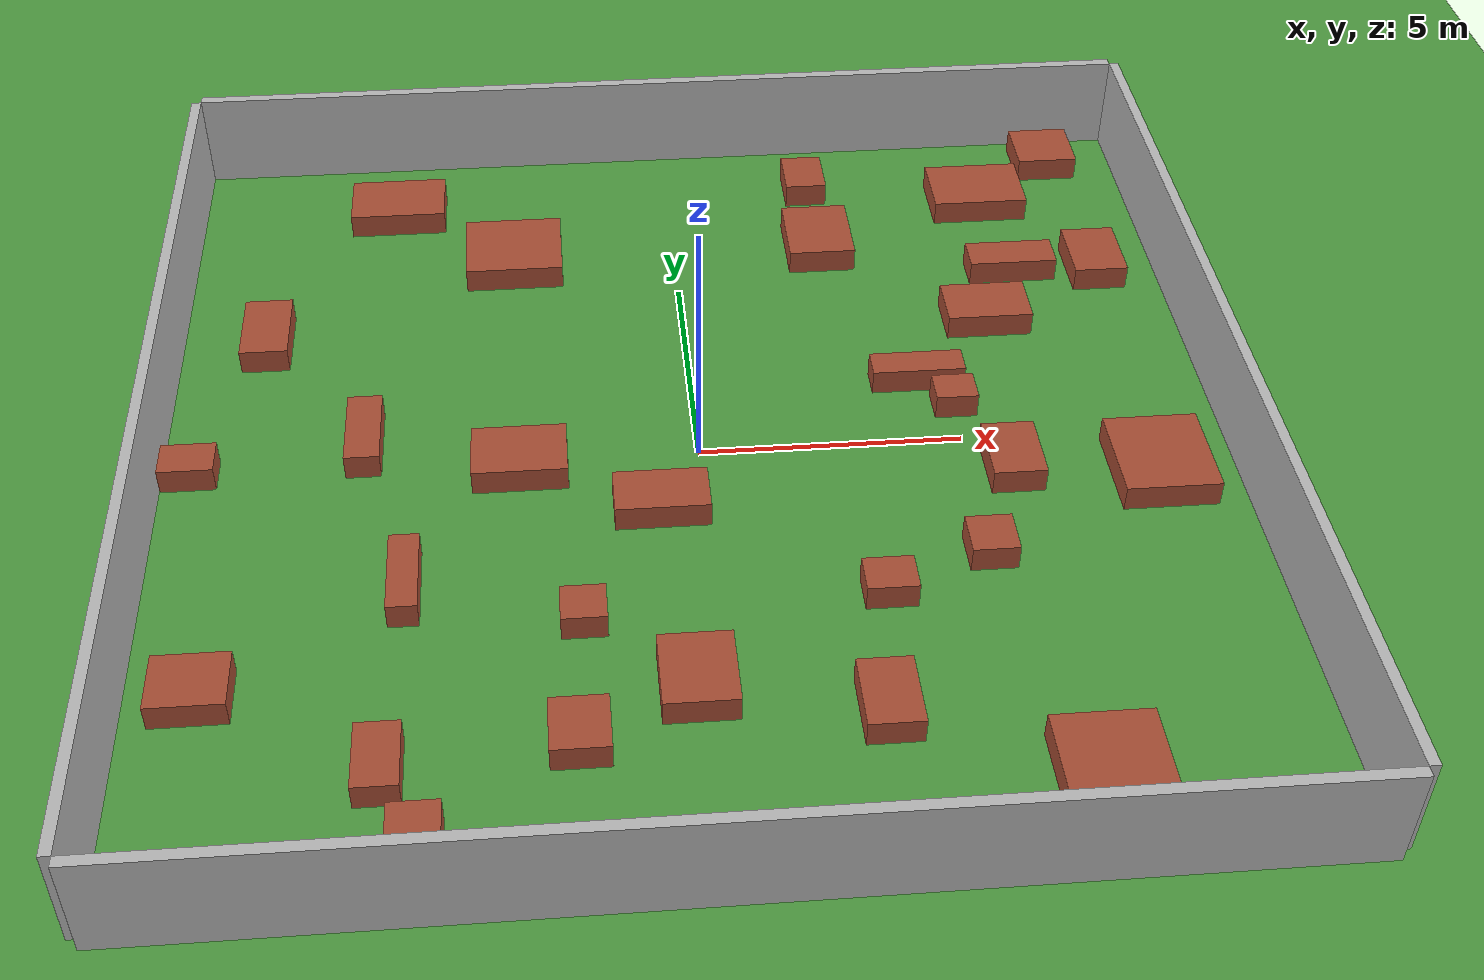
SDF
<?xml version='1.0' encoding='utf-8'?>
<sdf version="1.6"><world name="default"><physics type="ode"><real_time_update_rate>1000</real_time_update_rate><gravity>0 0 -9.81</gravity></physics><model name="ground_plane"><static>true</static><link name="ground_link"><collision name="collision"><geometry><plane><normal>0 0 1</normal><size>20 20</size></plane></geometry></collision><visual name="visual"><geometry><plane><normal>0 0 1</normal><size>20 20</size></plane></geometry><material><script><uri>file://media/materials/scripts/gazebo.material</uri><name>Gazebo/Grass</name></script></material></visual></link></model><model name="wall_north"><static>true</static><pose>0 10.1 1.0 0 0 0</pose><link name="link"><collision name="collision"><geometry><box><size>20 0.2 2.0</size></box></geometry></collision><visual name="visual"><geometry><box><size>20 0.2 2.0</size></box></geometry></visual></link></model><model name="wall_south"><static>true</static><pose>0 -10.1 1.0 0 0 0</pose><link name="link"><collision name="collision"><geometry><box><size>20 0.2 2.0</size></box></geometry></collision><visual name="visual"><geometry><box><size>20 0.2 2.0</size></box></geometry></visual></link></model><model name="wall_east"><static>true</static><pose>10.1 0 1.0 0 0 0</pose><link name="link"><collision name="collision"><geometry><box><size>0.2 20 2.0</size></box></geometry></collision><visual name="visual"><geometry><box><size>0.2 20 2.0</size></box></geometry></visual></link></model><model name="wall_west"><static>true</static><pose>-10.1 0 1.0 0 0 0</pose><link name="link"><collision name="collision"><geometry><box><size>0.2 20 2.0</size></box></geometry></collision><visual name="visual"><geometry><box><size>0.2 20 2.0</size></box></geometry></visual></link></model><include><uri>model://sun</uri></include><model name="box_0"><pose>6.96 5.2 0.25 0 0 0</pose><static>false</static><link name="link"><collision name="collision"><geometry><box><size>1.79 0.73 0.5</size></box></geometry></collision><visual name="visual"><geometry><box><size>1.79 0.73 0.5</size></box></geometry><material><script><uri>file://media/materials/scripts/gazebo.material</uri><name>Gazebo/Bricks</name></script></material></visual></link></model><model name="box_1"><pose>5.81 -0.85 0.25 0 0 0</pose><static>false</static><link name="link"><collision name="collision"><geometry><box><size>1.0 1.38 0.5</size></box></geometry></collision><visual name="visual"><geometry><box><size>1.0 1.38 0.5</size></box></geometry><material><script><uri>file://media/materials/scripts/gazebo.material</uri><name>Gazebo/Bricks</name></script></material></visual></link></model><model name="box_2"><pose>-2.31 -4.17 0.25 0 0 0</pose><static>false</static><link name="link"><collision name="collision"><geometry><box><size>0.81 0.78 0.5</size></box></geometry></collision><visual name="visual"><geometry><box><size>0.81 0.78 0.5</size></box></geometry><material><script><uri>file://media/materials/scripts/gazebo.material</uri><name>Gazebo/Bricks</name></script></material></visual></link></model><model name="box_3"><pose>-5.83 8.21 0.25 0 0 0</pose><static>false</static><link name="link"><collision name="collision"><geometry><box><size>1.98 1.31 0.5</size></box></geometry></collision><visual name="visual"><geometry><box><size>1.98 1.31 0.5</size></box></geometry><material><script><uri>file://media/materials/scripts/gazebo.material</uri><name>Gazebo/Bricks</name></script></material></visual></link></model><model name="box_4"><pose>6.14 3.62 0.25 0 0 0</pose><static>false</static><link name="link"><collision name="collision"><geometry><box><size>1.7 1.1 0.5</size></box></geometry></collision><visual name="visual"><geometry><box><size>1.7 1.1 0.5</size></box></geometry><material><script><uri>file://media/materials/scripts/gazebo.material</uri><name>Gazebo/Bricks</name></script></material></visual></link></model><model name="box_5"><pose>8.72 5.17 0.25 0 0 0</pose><static>false</static><link name="link"><collision name="collision"><geometry><box><size>1.09 1.44 0.5</size></box></geometry></collision><visual name="visual"><geometry><box><size>1.09 1.44 0.5</size></box></geometry><material><script><uri>file://media/materials/scripts/gazebo.material</uri><name>Gazebo/Bricks</name></script></material></visual></link></model><model name="box_6"><pose>5.94 -8.19 0.25 0 0 0</pose><static>false</static><link name="link"><collision name="collision"><geometry><box><size>1.78 1.77 0.5</size></box></geometry></collision><visual name="visual"><geometry><box><size>1.78 1.77 0.5</size></box></geometry><material><script><uri>file://media/materials/scripts/gazebo.material</uri><name>Gazebo/Bricks</name></script></material></visual></link></model><model name="box_7"><pose>-6.26 0.71 0.25 0 0 0</pose><static>false</static><link name="link"><collision name="collision"><geometry><box><size>0.66 1.75 0.5</size></box></geometry></collision><visual name="visual"><geometry><box><size>0.66 1.75 0.5</size></box></geometry><material><script><uri>file://media/materials/scripts/gazebo.material</uri><name>Gazebo/Bricks</name></script></material></visual></link></model><model name="box_8"><pose>-0.47 -5.81 0.25 0 0 0</pose><static>false</static><link name="link"><collision name="collision"><geometry><box><size>1.31 1.54 0.5</size></box></geometry></collision><visual name="visual"><geometry><box><size>1.31 1.54 0.5</size></box></geometry><material><script><uri>file://media/materials/scripts/gazebo.material</uri><name>Gazebo/Bricks</name></script></material></visual></link></model><model name="box_9"><pose>-5.09 -8.84 0.25 0 0 0</pose><static>false</static><link name="link"><collision name="collision"><geometry><box><size>0.87 1.25 0.5</size></box></geometry></collision><visual name="visual"><geometry><box><size>0.87 1.25 0.5</size></box></geometry><material><script><uri>file://media/materials/scripts/gazebo.material</uri><name>Gazebo/Bricks</name></script></material></visual></link></model><model name="box_10"><pose>3.0 8.51 0.25 0 0 0</pose><static>false</static><link name="link"><collision name="collision"><geometry><box><size>0.86 1.12 0.5</size></box></geometry></collision><visual name="visual"><geometry><box><size>0.86 1.12 0.5</size></box></geometry><material><script><uri>file://media/materials/scripts/gazebo.material</uri><name>Gazebo/Bricks</name></script></material></visual></link></model><model name="box_11"><pose>-3.37 6.3 0.25 0 0 0</pose><static>false</static><link name="link"><collision name="collision"><geometry><box><size>1.98 1.76 0.5</size></box></geometry></collision><visual name="visual"><geometry><box><size>1.98 1.76 0.5</size></box></geometry><material><script><uri>file://media/materials/scripts/gazebo.material</uri><name>Gazebo/Bricks</name></script></material></visual></link></model><model name="box_12"><pose>4.98 -3.06 0.25 0 0 0</pose><static>false</static><link name="link"><collision name="collision"><geometry><box><size>0.86 0.86 0.5</size></box></geometry></collision><visual name="visual"><geometry><box><size>0.86 0.86 0.5</size></box></geometry><material><script><uri>file://media/materials/scripts/gazebo.material</uri><name>Gazebo/Bricks</name></script></material></visual></link></model><model name="box_13"><pose>8.52 -1.18 0.25 0 0 0</pose><static>false</static><link name="link"><collision name="collision"><geometry><box><size>1.79 1.96 0.5</size></box></geometry></collision><visual name="visual"><geometry><box><size>1.79 1.96 0.5</size></box></geometry><material><script><uri>file://media/materials/scripts/gazebo.material</uri><name>Gazebo/Bricks</name></script></material></visual></link></model><model name="box_14"><pose>-0.79 -1.45 0.25 0 0 0</pose><static>false</static><link name="link"><collision name="collision"><geometry><box><size>1.75 1.01 0.5</size></box></geometry></collision><visual name="visual"><geometry><box><size>1.75 1.01 0.5</size></box></geometry><material><script><uri>file://media/materials/scripts/gazebo.material</uri><name>Gazebo/Bricks</name></script></material></visual></link></model><model name="box_15"><pose>8.46 9.14 0.25 0 0 0</pose><static>false</static><link name="link"><collision name="collision"><geometry><box><size>1.27 1.23 0.5</size></box></geometry></collision><visual name="visual"><geometry><box><size>1.27 1.23 0.5</size></box></geometry><material><script><uri>file://media/materials/scripts/gazebo.material</uri><name>Gazebo/Bricks</name></script></material></visual></link></model><model name="box_16"><pose>2.62 -6.57 0.25 0 0 0</pose><static>false</static><link name="link"><collision name="collision"><geometry><box><size>0.98 1.42 0.5</size></box></geometry></collision><visual name="visual"><geometry><box><size>0.98 1.42 0.5</size></box></geometry><material><script><uri>file://media/materials/scripts/gazebo.material</uri><name>Gazebo/Bricks</name></script></material></visual></link></model><model name="box_17"><pose>-3.35 -0.15 0.25 0 0 0</pose><static>false</static><link name="link"><collision name="collision"><geometry><box><size>1.78 1.26 0.5</size></box></geometry></collision><visual name="visual"><geometry><box><size>1.78 1.26 0.5</size></box></geometry><material><script><uri>file://media/materials/scripts/gazebo.material</uri><name>Gazebo/Bricks</name></script></material></visual></link></model><model name="box_18"><pose>-2.47 -6.84 0.25 0 0 0</pose><static>false</static><link name="link"><collision name="collision"><geometry><box><size>1.02 1.11 0.5</size></box></geometry></collision><visual name="visual"><geometry><box><size>1.02 1.11 0.5</size></box></geometry><material><script><uri>file://media/materials/scripts/gazebo.material</uri><name>Gazebo/Bricks</name></script></material></visual></link></model><model name="box_19"><pose>6.69 7.75 0.25 0 0 0</pose><static>false</static><link name="link"><collision name="collision"><geometry><box><size>1.98 1.41 0.5</size></box></geometry></collision><visual name="visual"><geometry><box><size>1.98 1.41 0.5</size></box></geometry><material><script><uri>file://media/materials/scripts/gazebo.material</uri><name>Gazebo/Bricks</name></script></material></visual></link></model><model name="box_20"><pose>-5.41 -3.16 0.25 0 0 0</pose><static>false</static><link name="link"><collision name="collision"><geometry><box><size>0.55 1.77 0.5</size></box></geometry></collision><visual name="visual"><geometry><box><size>0.55 1.77 0.5</size></box></geometry><material><script><uri>file://media/materials/scripts/gazebo.material</uri><name>Gazebo/Bricks</name></script></material></visual></link></model><model name="box_21"><pose>5.03 0.99 0.25 0 0 0</pose><static>false</static><link name="link"><collision name="collision"><geometry><box><size>0.81 0.68 0.5</size></box></geometry></collision><visual name="visual"><geometry><box><size>0.81 0.68 0.5</size></box></geometry><material><script><uri>file://media/materials/scripts/gazebo.material</uri><name>Gazebo/Bricks</name></script></material></visual></link></model><model name="box_22"><pose>-8.32 3.93 0.25 0 0 0</pose><static>false</static><link name="link"><collision name="collision"><geometry><box><size>0.94 1.65 0.5</size></box></geometry></collision><visual name="visual"><geometry><box><size>0.94 1.65 0.5</size></box></geometry><material><script><uri>file://media/materials/scripts/gazebo.material</uri><name>Gazebo/Bricks</name></script></material></visual></link></model><model name="box_23"><pose>-7.76 -9.28 0.25 0 0 0</pose><static>false</static><link name="link"><collision name="collision"><geometry><box><size>1.05 0.83 0.5</size></box></geometry></collision><visual name="visual"><geometry><box><size>1.05 0.83 0.5</size></box></geometry><material><script><uri>file://media/materials/scripts/gazebo.material</uri><name>Gazebo/Bricks</name></script></material></visual></link></model><model name="box_24"><pose>-5.71 -7.23 0.25 0 0 0</pose><static>false</static><link name="link"><collision name="collision"><geometry><box><size>0.78 1.33 0.5</size></box></geometry></collision><visual name="visual"><geometry><box><size>0.78 1.33 0.5</size></box></geometry><material><script><uri>file://media/materials/scripts/gazebo.material</uri><name>Gazebo/Bricks</name></script></material></visual></link></model><model name="box_25"><pose>-9.47 0.09 0.25 0 0 0</pose><static>false</static><link name="link"><collision name="collision"><geometry><box><size>1.03 0.75 0.5</size></box></geometry></collision><visual name="visual"><geometry><box><size>1.03 0.75 0.5</size></box></geometry><material><script><uri>file://media/materials/scripts/gazebo.material</uri><name>Gazebo/Bricks</name></script></material></visual></link></model><model name="box_26"><pose>3.05 6.34 0.25 0 0 0</pose><static>false</static><link name="link"><collision name="collision"><geometry><box><size>1.36 1.65 0.5</size></box></geometry></collision><visual name="visual"><geometry><box><size>1.36 1.65 0.5</size></box></geometry><material><script><uri>file://media/materials/scripts/gazebo.material</uri><name>Gazebo/Bricks</name></script></material></visual></link></model><model name="box_27"><pose>-8.85 -5.42 0.25 0 0 0</pose><static>false</static><link name="link"><collision name="collision"><geometry><box><size>1.36 1.16 0.5</size></box></geometry></collision><visual name="visual"><geometry><box><size>1.36 1.16 0.5</size></box></geometry><material><script><uri>file://media/materials/scripts/gazebo.material</uri><name>Gazebo/Bricks</name></script></material></visual></link></model><model name="box_28"><pose>4.43 1.78 0.25 0 0 0</pose><static>false</static><link name="link"><collision name="collision"><geometry><box><size>1.81 0.59 0.5</size></box></geometry></collision><visual name="visual"><geometry><box><size>1.81 0.59 0.5</size></box></geometry><material><script><uri>file://media/materials/scripts/gazebo.material</uri><name>Gazebo/Bricks</name></script></material></visual></link></model><model name="box_29"><pose>3.03 -3.9 0.25 0 0 0</pose><static>false</static><link name="link"><collision name="collision"><geometry><box><size>0.93 0.75 0.5</size></box></geometry></collision><visual name="visual"><geometry><box><size>0.93 0.75 0.5</size></box></geometry><material><script><uri>file://media/materials/scripts/gazebo.material</uri><name>Gazebo/Bricks</name></script></material></visual></link></model></world></sdf>
